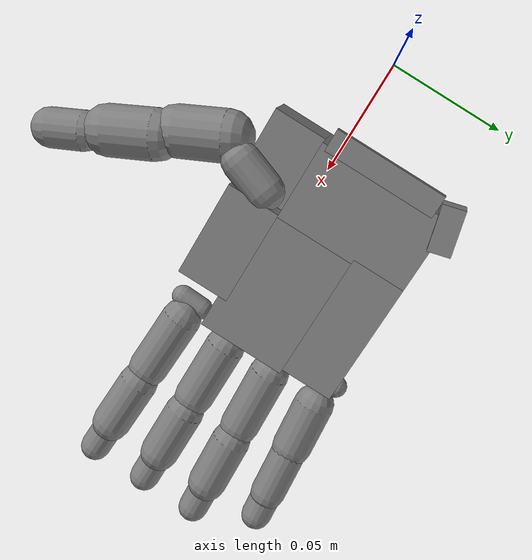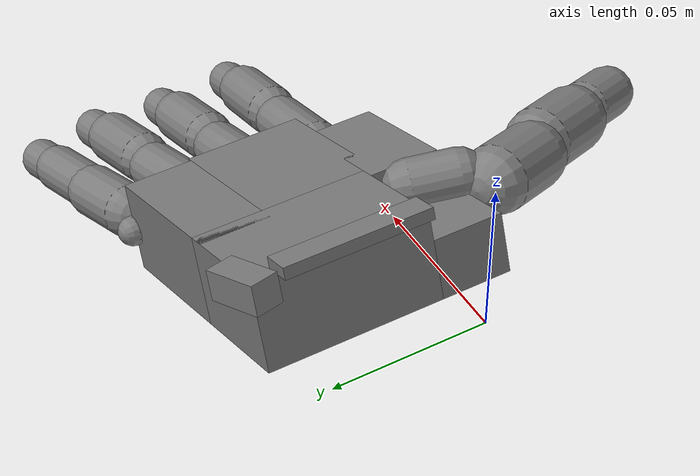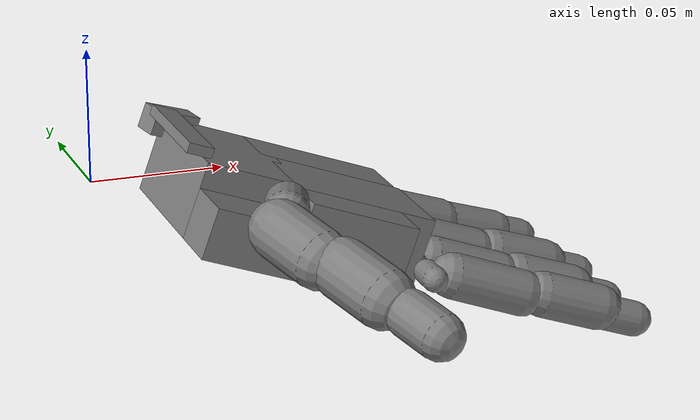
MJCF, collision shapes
<mujoco model="Tetheria_PreGen1_RightHand">
  <compiler angle="radian" meshdir="meshes/" autolimits="true"/>

  <option timestep="0.001" integrator="Euler" iterations="5" ls_iterations="8">
    <flag eulerdamp="disable"/>
  </option>

  <custom>
    <numeric data="30" name="max_contact_points"/>
    <numeric data="12" name="max_geom_pairs"/>
  </custom>

  <contact>
        <!-- filter the palm from all other finger bodies except the tips -->
        <exclude body1="palm" body2="right_t_link" />
        <exclude body1="palm" body2="right_index_f_link" />
        <exclude body1="palm" body2="right_middle_f_link" />
        <exclude body1="palm" body2="right_ring_f_link" />
        <exclude body1="palm" body2="right_pinky_f_link" />

        <exclude body1="palm" body2="right_thumb_mcp_link" />
        <exclude body1="palm" body2="right_index_proximal_link" />
        <exclude body1="palm" body2="right_middle_proximal_link" />
        <exclude body1="palm" body2="right_ring_proximal_link" />
        <exclude body1="palm" body2="right_pinky_proximal_link" />

        <exclude body1="palm" body2="right_thumb_proximal_link" />
        <exclude body1="palm" body2="right_index_middle_link" />
        <exclude body1="palm" body2="right_middle_middle_link" />
        <exclude body1="palm" body2="right_ring_middle_link" />
        <exclude body1="palm" body2="right_pinky_middle_link" />

        <!-- none of the base fingertip geoms can touch each other -->
        <exclude body1="right_t_link" body2="right_index_f_link" />
        <exclude body1="right_t_link" body2="right_middle_f_link" />
        <exclude body1="right_t_link" body2="right_ring_f_link" />
        <exclude body1="right_t_link" body2="right_pinky_f_link" />

        <exclude body1="right_index_f_link" body2="right_middle_f_link" />
        <exclude body1="right_index_f_link" body2="right_ring_f_link" />
        <exclude body1="right_index_f_link" body2="right_pinky_f_link" />

        <exclude body1="right_middle_f_link" body2="right_ring_f_link" />
        <exclude body1="right_middle_f_link" body2="right_pinky_f_link" />

        <exclude body1="right_ring_f_link" body2="right_pinky_f_link" />

    </contact>

  <default>
        <default class="right_hand">
            <mesh scale="0.001 0.001 0.001" />
            <geom solref="0.02 1.5" solimp="0.9 0.99 0.001"/>
            <joint axis="1 0 0" damping="0.05" armature="0.0002" frictionloss="0.01" />
            <position forcerange="-1 1" />
            <default class="visual">
              <geom group="2" type="mesh" contype="0" conaffinity="0" density="0" material="black"/>
            </default>
            <default class="tip">
              <geom size="0.01 0.012 0.016" pos="-0.0012969 -0.0335524 0.0145207" quat="0.703552 0.709596 -0.0292107 -0.0252203" type="box" friction="0.7 0.05 0.0002" rgba=".5 .5 .5 .3"/>
            </default>
            <default class="thumb_tip">
              <geom size="0.01 0.012 0.016" pos="-0.00127744 -0.0455619 -0.0144774" quat="0.708101 0.705072 -0.0294902 -0.024426" type="box" friction="0.7 0.05 0.0002" rgba=".5 .5 .5 .3"/>
            </default>
            <default class="wrist">
                <joint damping="0.5" />
                <default class="wrist_y">
                    <joint axis="0 -1 0" range="-0.523599 0.174533" />
                    <position ctrlrange="-0.523599 0.174533" />
                </default>
                <default class="wrist_x">
                    <joint range="-0.698132 0.488692" />
                    <position ctrlrange="-0.698132 0.488692" />
                </default>
            </default>

            <default class="thumb">
                <default class="thbase">
                    <joint axis="0 0 1" range="-1.0472 1.0472" />
                    <position ctrlrange="-1.1 1.1" />
                </default>
                <default class="thproximal">
                    <joint axis="-1 0 0" range="0 1.7453" />
                    <position ctrlrange="-0.1 1.75" />
                </default>
                <default class="thhub">
                    <joint axis="-1 0 0" range="0 1.4" />
                    <position ctrlrange="-0.1 1.5" />
                </default>
                <default class="thmiddle">
                    <joint axis="0 -1 0" range="0 1.2217" armature="0.00014375"/>
                    <position ctrlrange="-0.1 1.3" />
                </default>
                <default class="thdistal">
                    <joint range="0 1.5708" armature="0.00014375"/>
                    <position ctrlrange="-0.1 1.58" />
                    <geom friction="0.7 0.05 0.0002" />
                </default>
            </default>

            <default class="metacarpal">
                <joint axis="0.573576 0 0.819152" range="0 1.5708" armature="0.000002306"/>
                <position ctrlrange="-0.1 1.58" />
            </default>
            <default class="knuckle">
                <joint axis="0 -1 0" range="-0.2618 0.2618" armature="0.000002306"/>
                <position ctrlrange="-0.27 0.27" />
            </default>
            <default class="proximal">
                <joint range="0 1.5708" armature="0.00014375"/>
                <position ctrlrange="-0.1 1.58" />
            </default>
            <default class="middle_distal">
                <joint range="0 1.5708" armature="0.00014375"/>
                <position ctrlrange="-0.1 1.58" />
                <geom friction="0.7 0.05 0.0002" />
            </default>

            <default class="plastic">
                <geom friction="0.7 0.05 0.0002" />
                <default class="plastic_visual">
                    <geom type="mesh" contype="0" conaffinity="0" density="0" group="2" />
                </default>
                <default class="plastic_collision">
                    <geom group="3" />
                </default>
            </default>
        </default>
  </default>

  <asset>
    <material name="black" rgba="0.2 0.2 0.2 1"/>
    <material name="gray" rgba="0.5 0.5 0.5 1"/>
    <mesh name="tetheria_mount" file="tetheria_mount.obj"/>

    <mesh name="right_frame_link" content_type="model/stl" file="right_frame_link.STL"/>
    <mesh name="right_pinky_prismatic_2_link" content_type="model/stl" file="right_pinky_prismatic_2_link.STL"/>
    <mesh name="right_index_prismatic_1_link" content_type="model/stl" file="right_index_prismatic_1_link.STL"/>
    <mesh name="right_middle_prismatic_1_link" content_type="model/stl" file="right_middle_prismatic_1_link.STL"/>
    <mesh name="right_middle_prismatic_2_link" content_type="model/stl" file="right_middle_prismatic_2_link.STL"/>
    <mesh name="right_ring_prismatic_2_link" content_type="model/stl" file="right_ring_prismatic_2_link.STL"/>
    <mesh name="right_pinky_prismatic_1_link" content_type="model/stl" file="right_pinky_prismatic_1_link.STL"/>
    <mesh name="right_ring_prismatic_1_link" content_type="model/stl" file="right_ring_prismatic_1_link.STL"/>
    <mesh name="right_pinky_f_link" content_type="model/stl" file="right_pinky_f_link.STL"/>
    <mesh name="right_pinky_proximal_link" content_type="model/stl" file="right_pinky_proximal_link.STL"/>
    <mesh name="right_pinky_middle_link" content_type="model/stl" file="right_pinky_middle_link.STL"/>
    <mesh name="right_pinky_distal_link" content_type="model/stl" file="right_pinky_distal_link.STL"/>
    <mesh name="right_pinky_tip_link" content_type="model/stl" file="right_pinky_tip_link.STL"/>
    <mesh name="right_middle_f_link" content_type="model/stl" file="right_middle_f_link.STL"/>
    <mesh name="right_middle_proximal_link" content_type="model/stl" file="right_middle_proximal_link.STL"/>
    <mesh name="right_middle_middle_link" content_type="model/stl" file="right_middle_middle_link.STL"/>
    <mesh name="right_middle_distal_link" content_type="model/stl" file="right_middle_distal_link.STL"/>
    <mesh name="right_middle_tip_link" content_type="model/stl" file="right_middle_tip_link.STL"/>
    <mesh name="right_index_f_link" content_type="model/stl" file="right_index_f_link.STL"/>
    <mesh name="right_index_proximal_link" content_type="model/stl" file="right_index_proximal_link.STL"/>
    <mesh name="right_index_middle_link" content_type="model/stl" file="right_index_middle_link.STL"/>
    <mesh name="right_index_distal_link" content_type="model/stl" file="right_index_distal_link.STL"/>
    <mesh name="right_index_tip_link" content_type="model/stl" file="right_index_tip_link.STL"/>
    <mesh name="right_ring_f_link" content_type="model/stl" file="right_ring_f_link.STL"/>
    <mesh name="right_ring_proximal_link" content_type="model/stl" file="right_ring_proximal_link.STL"/>
    <mesh name="right_ring_middle_link" content_type="model/stl" file="right_ring_middle_link.STL"/>
    <mesh name="right_ring_distal_link" content_type="model/stl" file="right_ring_distal_link.STL"/>
    <mesh name="right_ring_tip_link" content_type="model/stl" file="right_ring_tip_link.STL"/>
    <mesh name="right_index_prismatic_2_link" content_type="model/stl" file="right_index_prismatic_2_link.STL"/>
    <mesh name="right_t_link" content_type="model/stl" file="right_t_link.STL"/>
    <mesh name="right_thumb_mcp_link" content_type="model/stl" file="right_thumb_mcp_link.STL"/>
    <mesh name="right_thumb_proximal_link" content_type="model/stl" file="right_thumb_proximal_link.STL"/>
    <mesh name="right_thumb_distal_link" content_type="model/stl" file="right_thumb_distal_link.STL"/>
    <mesh name="right_thumb_tip_link" content_type="model/stl" file="right_thumb_tip_link.STL"/>
    <mesh name="right_palm_cover_link" content_type="model/stl" file="right_palm_cover_link.STL"/>
  </asset>

  <worldbody>

    <body name="tetheria_mount" pos="0 0 0" quat="1 0 0 0">
      <geom name="tetheria_mount_visual" pos="0 0 0" quat="1 0 0 0" class="plastic_visual" mesh="tetheria_mount"/>
      <geom name="leap_mount_collision_0" size="0.002 0.025 0.005" pos="0.0405 0.02 0.009"
        quat="0.57346234 0 0.81923192 0" type="box" class="plastic_collision"/>
      <geom name="leap_mount_collision_1" size="0.005 0.010 0.005" pos="0.045 0.053 0.002"
        quat="0.4987168 0.64994038 -0.34910175 0.45495826" type="box" class="plastic_collision"/>
      <site name="grasp_site" pos="0.11 0.0 0.03" group="4"/>
      <body name="palm" pos="0.03 0.0105 -0.015" quat="-0.4056 0.5792 -0.5792 0.4056">
        <geom type="mesh" class="plastic_visual" rgba="0.611765 0.658824 0.670588 1" mesh="right_palm_cover_link"/>
        <geom type="mesh" class="plastic_visual" rgba="0.611765 0.658824 0.670588 1" mesh="right_frame_link"/>
        <geom size="0.03 0.015 0.02" pos="-0.012 -0.008 0.025" type="box"
                class="plastic_collision" />
        <geom size="0.02 0.015 0.029" pos="0.002 -0.008 0.07" type="box"
                class="plastic_collision" />
        <geom size="0.012 0.015 0.022" pos="0.03 -0.008 0.062" type="box"
                class="plastic_collision" />
        <geom size="0.012 0.015 0.029" pos="-0.03 -0.008 0.068" type="box"
                class="plastic_collision" />
        <geom size="0.012 0.01 0.02" pos="0.03 -0.003 0.025" type="box"
                class="plastic_collision" />
      <body name="right_pinky_f_link" pos="-0.036912 -0.0066167 0.087021" quat="0.998019 0.00182998 -0.0523041 0.034918">
        <inertial pos="0 0 0.0017" mass="0.000169697" diaginertia="1.29009e-09 1.29009e-09 7.6801e-10"/>
        <joint name="right_pinky_mcp_abd" pos="0 0 0" axis="0 1 0" range="-0.3491 0.3491" class= "knuckle"/>
        <geom type="mesh" rgba="0.611765 0.658824 0.670588 1" mesh="right_pinky_f_link" class="plastic_visual"/>
        <geom size="0.005 0.005" pos="0 0 0.01" quat="1 0 1 0" type="capsule" class="plastic_collision" />
        <body name="right_pinky_proximal_link" pos="0 0 0.0034">
          <inertial pos="-4.24866e-08 -0.00357857 0.0205176" quat="0.706879 0.0179383 -0.0179383 0.706879" mass="0.00600337" diaginertia="8.89987e-07 8.65277e-07 2.05351e-07"/>
          <joint name="right_pinky_mcp_flex" pos="0 0 0" axis="1 0 0" range="0 1.5708" class="metacarpal"/>
          <geom type="mesh" rgba="1 0.4 0.4 1" mesh="right_pinky_proximal_link" class="plastic_visual"/>
          <geom size="0.009 0.012" pos="0 -0.002 0.03" type="capsule"
                        class="plastic_collision" />
          <body name="right_pinky_middle_link" pos="0 -0.0014554 0.043" quat="0.999962 0.00872639 0 0">
            <inertial pos="1.1729e-08 -0.00110519 0.0093962" quat="0.706846 -0.0191898 0.019202 0.706846" mass="0.00237591" diaginertia="1.6252e-07 1.35575e-07 7.42876e-08"/>
            <joint name="right_pinky_pip" pos="0 0 0" axis="1 0 0" range="0 1.5708" class="proximal"/>
            <geom type="mesh" rgba="0.490196 0.490196 0.490196 1" mesh="right_pinky_middle_link" class="plastic_visual"/>
            <geom size="0.008 0.0125" pos="0 -0.001 0.0125" type="capsule"
                            class="plastic_collision" />
            <body name="right_pinky_distal_link" pos="0 0.00036966 0.021997" quat="1 0.00052935 0 0">
              <inertial pos="-0.00184407 0.000358264 0.0107282" quat="0.696242 -0.184421 0.0500633 0.691903" mass="0.00309314" diaginertia="1.89076e-07 1.75557e-07 6.3941e-08"/>
              <joint name="right_pinky_dip" pos="0 0 0" axis="1 0 0" range="0 1.5708" class="middle_distal"/>
              <geom type="mesh" rgba="0 1 1 1" mesh="right_pinky_distal_link" class="plastic_visual"/>
              <geom pos="0 0.0033789 0.024944" quat="0.999999 -0.0015829 0 0" type="mesh" rgba="1 0.227451 0.882353 1" mesh="right_pinky_tip_link" class="plastic_visual"/>
              <geom name="pf_tip" size="0.007 0.006" pos="0 -0.001 0.01" type="capsule"
                                class="plastic_collision" />
              <site name="pf_tip" pos="0 -0.003 0.023" group="4"/>
            </body>
          </body>
        </body>
      </body>
      <body name="right_middle_f_link" pos="0.0085 -0.003 0.10061">
        <inertial pos="0 0 0.0017" mass="0.000169697" diaginertia="1.29009e-09 1.29009e-09 7.6801e-10"/>
        <joint name="right_middle_mcp_abd" pos="0 0 0" axis="0 1 0" range="-0.3491 0.3491" class="knuckle" />
        <geom type="mesh" rgba="0.611765 0.658824 0.670588 1" mesh="right_middle_f_link" class="plastic_visual"/>
        <geom size="0.005 0.005" quat="1 0 1 0" type="capsule" class="plastic_collision" />
        <body name="right_middle_proximal_link" pos="0 0 0.0034">
          <inertial pos="-5.79907e-08 -0.00357858 0.0205176" quat="0.706861 0.0179374 -0.0179384 0.706897" mass="0.00600338" diaginertia="8.89988e-07 8.65279e-07 2.05352e-07"/>
          <joint name="right_middle_mcp_flex" pos="0 0 0" axis="1 0 0" range="0 1.5708" class="metacarpal" />
          <geom type="mesh" rgba="1 0.4 0.4 1" mesh="right_middle_proximal_link" class="plastic_visual"/>
          <geom size="0.009 0.015" pos="0 -0.002 0.02" type="capsule"
                        class="plastic_collision" />
          <body name="right_middle_middle_link" pos="0 -0.0014554 0.043" quat="0.999962 0.00872639 0 0">
            <inertial pos="9.42153e-09 -0.00110516 0.00939618" quat="0.706832 -0.0191899 0.0192034 0.706861" mass="0.0023759" diaginertia="1.62521e-07 1.35575e-07 7.42872e-08"/>
            <joint name="right_middle_pip" pos="0 0 0" axis="1 0 0" range="0 1.5708" class="proximal" />
            <geom type="mesh" rgba="0.490196 0.490196 0.490196 1" mesh="right_middle_middle_link" class="plastic_visual"/>
            <geom size="0.009 0.0125" pos="0 -0.002 0.0125" type="capsule"
                            class="plastic_collision" />
            <body name="right_middle_distal_link" pos="0 0.00036966 0.021997" quat="1 0.00052935 0 0">
              <inertial pos="-0.00184407 0.000358307 0.0107282" quat="0.696243 -0.184422 0.0500631 0.691902" mass="0.00309312" diaginertia="1.89075e-07 1.75556e-07 6.39407e-08"/>
              <joint name="right_middle_dip" pos="0 0 0" axis="1 0 0" range="0 1.5708" class="middle_distal" />
              <geom type="mesh" rgba="0 1 1 1" mesh="right_middle_distal_link" class="plastic_visual"/>
              <geom pos="0 0.0033789 0.024944" quat="0.999999 -0.0015829 0 0" type="mesh" rgba="1 0.227451 0.882353 1" mesh="right_middle_tip_link" class="plastic_visual"/>
              <geom name="mf_tip" size="0.007 0.009" pos="0 -0.001 0.01" type="capsule"
                                class="plastic_collision" />
              <site name="mf_tip" pos="0 -0.003 0.023" group="4"/>
            </body>
          </body>
        </body>
      </body>
      <body name="right_index_f_link" pos="0.031448 -0.004172 0.10003" quat="0.999505 0.000456857 0.026173 -0.0174466">
        <inertial pos="0 0 0.0017" mass="0.000169697" diaginertia="1.29009e-09 1.29009e-09 7.6801e-10"/>
        <joint name="right_index_mcp_abd" pos="0 0 0" axis="0 1 0" range="-0.3491 0.3491" class="knuckle" />
        <geom type="mesh" rgba="0.611765 0.658824 0.670588 1" mesh="right_index_f_link" class="plastic_visual"/>
        <geom size="0.005 0.005" quat="1 0 1 0" type="capsule" class="plastic_collision" />
        <body name="right_index_proximal_link" pos="0 0 0.0034">
          <inertial pos="-6.14568e-08 -0.00357858 0.0205176" quat="0.706858 0.0179374 -0.0179385 0.7069" mass="0.00600337" diaginertia="8.89988e-07 8.65278e-07 2.05352e-07"/>
          <joint name="right_index_mcp_flex" pos="0 0 0" axis="1 0 0" range="0 1.5708" class="metacarpal" />
          <geom type="mesh" rgba="1 0.4 0.4 1" mesh="right_index_proximal_link" class="plastic_visual"/>
          <geom size="0.009 0.015" pos="0 -0.002 0.02" type="capsule"
                        class="plastic_collision" />
          <body name="right_index_middle_link" pos="0 -0.0014554 0.043" quat="0.999962 0.00872639 0 0">
            <inertial pos="2.38785e-08 -0.00110516 0.00939619" quat="0.706833 -0.0191908 0.0192032 0.70686" mass="0.0023759" diaginertia="1.62521e-07 1.35575e-07 7.42871e-08"/>
            <joint name="right_index_pip" pos="0 0 0" axis="1 0 0" range="0 1.5708" class="proximal" />
            <geom type="mesh" rgba="0.490196 0.490196 0.490196 1" mesh="right_index_middle_link" class="plastic_visual"/>
            <geom size="0.009 0.0125" pos="0 -0.002 0.0125" type="capsule"
                            class="plastic_collision" />
            <body name="right_index_distal_link" pos="0 0.00036966 0.021997" quat="1 0.00052935 0 0">
              <inertial pos="-0.00184412 0.000358323 0.0107277" quat="0.696253 -0.184428 0.0500635 0.69189" mass="0.00309312" diaginertia="1.89064e-07 1.75544e-07 6.39413e-08"/>
              <joint name="right_index_dip" pos="0 0 0" axis="1 0 0" range="0 1.5708" class="middle_distal" />
              <geom type="mesh" rgba="0 1 1 1" mesh="right_index_distal_link" class="plastic_visual"/>
              <geom pos="0 0.0033789 0.024944" quat="0.999999 -0.0015829 0 0" type="mesh" rgba="1 0.227451 0.882353 1" mesh="right_index_tip_link" class="plastic_visual"/>
              <geom name="if_tip" size="0.007 0.009" pos="0 -0.001 0.01" type="capsule"
                                class="plastic_collision" />
              <site name="if_tip" pos="0 -0.003 0.023" group="4"/>
            </body>
          </body>
        </body>
      </body>
      <body name="right_ring_f_link" pos="-0.014448 -0.004172 0.10003" quat="0.999505 0.000456857 -0.026173 0.0174466">
        <inertial pos="0 0 0.0017" mass="0.000169697" diaginertia="1.29009e-09 1.29009e-09 7.6801e-10"/>
        <joint name="right_ring_mcp_abd" pos="0 0 0" axis="0 1 0" range="-0.3491 0.3491" class="knuckle"/>
        <geom type="mesh" rgba="0.611765 0.658824 0.670588 1" mesh="right_ring_f_link" class="plastic_visual"/>
        <geom size="0.005 0.005" quat="1 0 1 0" type="capsule" class="plastic_collision" />
        <body name="right_ring_proximal_link" pos="0 0 0.0034">
          <inertial pos="-4.27735e-08 -0.00357857 0.0205176" quat="0.706879 0.0179383 -0.0179383 0.706879" mass="0.00600337" diaginertia="8.89987e-07 8.65277e-07 2.05351e-07"/>
          <joint name="right_ring_mcp_flex" pos="0 0 0" axis="1 0 0" range="0 1.5708" class="metacarpal"/>
          <geom type="mesh" rgba="1 0.4 0.4 1" mesh="right_ring_proximal_link" class="plastic_visual"/>
          <geom size="0.009 0.015" pos="0 -0.002 0.02" type="capsule"
                        class="plastic_collision" />
          <body name="right_ring_middle_link" pos="0 -0.0014554 0.043" quat="0.999962 0.00872639 0 0">
            <inertial pos="5.2917e-09 -0.00110519 0.0093962" quat="0.706846 -0.0191893 0.019202 0.706846" mass="0.00237591" diaginertia="1.62521e-07 1.35575e-07 7.42877e-08"/>
            <joint name="right_ring_pip" pos="0 0 0" axis="1 0 0" range="0 1.5708" class="proximal" />
            <geom type="mesh" rgba="0.490196 0.490196 0.490196 1" mesh="right_ring_middle_link" class="plastic_visual"/>
            <geom size="0.009 0.0125" pos="0 -0.002 0.0125" type="capsule"
                            class="plastic_collision" />
            <body name="right_ring_distal_link" pos="0 0.00036966 0.021997" quat="1 0.00052935 0 0">
              <inertial pos="-0.00184407 0.000358289 0.0107282" quat="0.696244 -0.184422 0.050064 0.691901" mass="0.00309314" diaginertia="1.89076e-07 1.75558e-07 6.39409e-08"/>
              <joint name="right_ring_dip" pos="0 0 0" axis="1 0 0" range="0 1.5708" class="middle_distal"/>
              <geom type="mesh" rgba="0 1 1 1" mesh="right_ring_distal_link" class="plastic_visual"/>
              <geom pos="0 0.0033789 0.024944" quat="0.999999 -0.0015829 0 0" type="mesh" rgba="1 0.227451 0.882353 1" mesh="right_ring_tip_link" class="plastic_visual"/>
              <geom name="rf_tip" size="0.007 0.009" pos="0 -0.001 0.01" type="capsule"
                                class="plastic_collision" />
              <site name="rf_tip" pos="0 -0.003 0.023" group="4"/>
            </body>
          </body>
        </body>
      </body>
      <body name="right_t_link" pos="0.026317 -0.0175 0.02956" quat="0.579233 -0.40557 0.405572 -0.579235">
        <inertial pos="-0.000792597 0.00920489 0.00837042" quat="0.968785 -0.231969 -0.0564922 0.066746" mass="0.00893482" diaginertia="1.11708e-06 8.42419e-07 4.36164e-07"/>
        <joint name="right_thumb_cmc_abd" pos="0 0 0" axis="0 1 0" range="0 1.7453" class="thproximal"/>
        <geom type="mesh" rgba="0 0 1 1" mesh="right_t_link" class="plastic_visual"/>
        <geom class="plastic_collision" size="0.0085 0.008" pos="0 0 0.01" quat="0.9397 -0.3420 0 0" type="capsule" />
        <body name="right_thumb_mcp_link" pos="-0.0024625 0.011988 0.019805" quat="0.988119 0.0527639 -0.058289 0.132056">
          <inertial pos="-3.98621e-09 -0.0014303 0.0147562" quat="0.706814 0.0205256 -0.020536 0.706804" mass="0.0102694" diaginertia="1.58158e-06 1.39018e-06 6.7267e-07"/>
          <joint name="right_thumb_cmc_flex" pos="0 0 0" axis="1 0 0" range="0 0.9559" class="thhub"/>
          <geom size="0.0115 0.011" pos="-0.0008 0.002 0.015" type="capsule"
                        class="plastic_collision" />
          <geom type="mesh" rgba="1 0.4 0.4 1" mesh="right_thumb_mcp_link" class="plastic_visual"/>
          <body name="right_thumb_proximal_link" pos="0 0.0013652 0.035982">
            <inertial pos="-9.60413e-08 -0.00147723 0.0133935" quat="0.707028 -0.010773 0.0107885 0.707021" mass="0.00574573" diaginertia="6.77924e-07 5.00351e-07 3.51862e-07"/>
            <joint name="right_thumb_mcp" pos="0 0 0" axis="1 0 0" range="0 1.5708" class="thmiddle"/>
            <geom type="mesh" rgba="0 0.6 1 1" mesh="right_thumb_proximal_link" class="plastic_visual"/>
            <geom size="0.0115 0.011" pos="0 -0.002 0.01" euler="-15.7 0 0"
                            type="capsule"
                            class="plastic_collision" />
            <body name="right_thumb_distal_link" pos="0 0.00052357 0.029995">
              <inertial pos="-0.00113926 -0.00130909 0.0133464" quat="0.698666 -0.140008 0.0513212 0.699736" mass="0.00692863" diaginertia="6.65186e-07 5.66522e-07 2.78338e-07"/>
              <joint name="right_thumb_ip" pos="0 0 0" axis="1 0 0" range="0 1.5708" class="thdistal"/>
              <geom type="mesh" rgba="0.792157 0.819608 0.933333 1" mesh="right_thumb_distal_link" class="plastic_visual"/>
              <geom pos="0 0.0024685 0.029987" quat="0.999982 0.00592597 0 0" type="mesh" rgba="1 0 1 1" mesh="right_thumb_tip_link" class="plastic_visual"/>
              <geom name="th_tip" size="0.009 0.008" pos="0 -0.004 0.01" type="capsule"
                                class="plastic_collision" />
              <site name="th_tip" pos="0 -0.005 0.027" group="4"/>
            </body>
          </body>
        </body>
      </body>
      </body>
    </body>
  </worldbody>

    <actuator>

        <position name="right_thumb_A_pip" joint="right_thumb_ip" class="thdistal" />
        <position name="right_thumb_A_mcp_abd" joint="right_thumb_cmc_abd" class="thproximal" />
        <position name="right_thumb_A_cmc_flex" joint="right_thumb_cmc_flex" class="thhub" />

        <position name="right_index_A_pip" joint="right_index_pip" class="middle_distal" />
        <position name="right_index_A_mcp_abd" joint="right_index_mcp_abd" class="knuckle" />
        <position name="right_index_A_mcp_flex" joint="right_index_mcp_flex" class="metacarpal" />

        <position name="right_middle_A_pip" joint="right_middle_pip" class="middle_distal" />
        <position name="right_middle_A_mcp_abd" joint="right_middle_mcp_abd" class="knuckle" />
        <position name="right_middle_A_mcp_flex" joint="right_middle_mcp_flex" class="metacarpal" />

        <position name="right_ring_A_pip" joint="right_ring_pip" class="middle_distal" />
        <position name="right_ring_A_mcp_abd" joint="right_ring_mcp_abd" class="knuckle" />
        <position name="right_ring_A_mcp_flex" joint="right_ring_mcp_flex" class="metacarpal" />

        <position name="right_pinky_A_pip" joint="right_pinky_pip" class="middle_distal" />
        <position name="right_pinky_A_mcp_abd" joint="right_pinky_mcp_abd" class="knuckle" />
        <position name="right_pinky_A_mcp_flex" joint="right_pinky_mcp_flex" class="metacarpal" />
    </actuator>

    <equality>
        <joint joint1="right_thumb_mcp" joint2="right_thumb_ip"/>
        <joint joint1="right_index_pip" joint2="right_index_dip"/>
        <joint joint1="right_middle_pip" joint2="right_middle_dip"/>
        <joint joint1="right_ring_pip" joint2="right_ring_dip"/>
        <joint joint1="right_pinky_pip" joint2="right_pinky_dip"/>
    </equality>

</mujoco>
